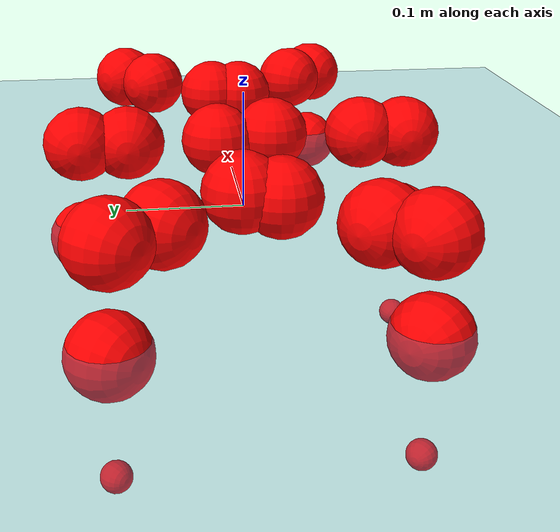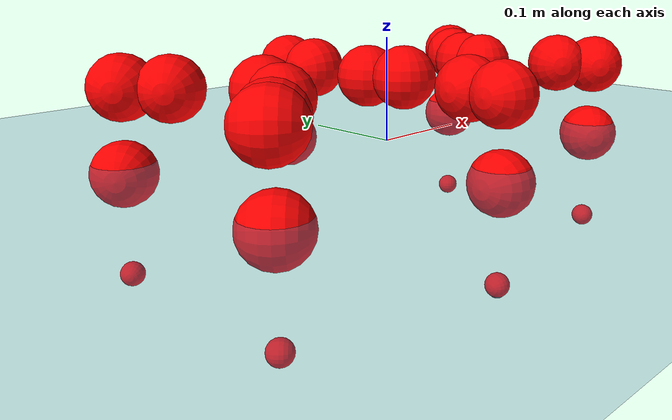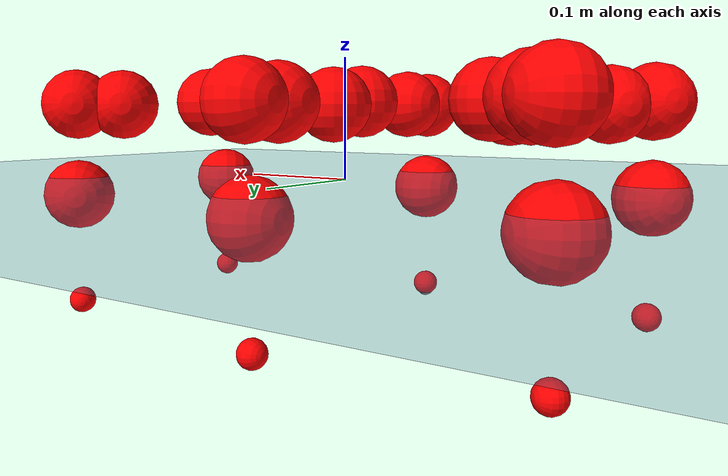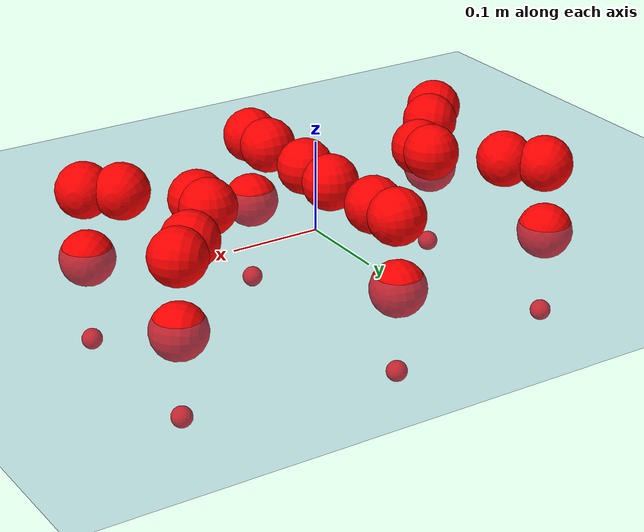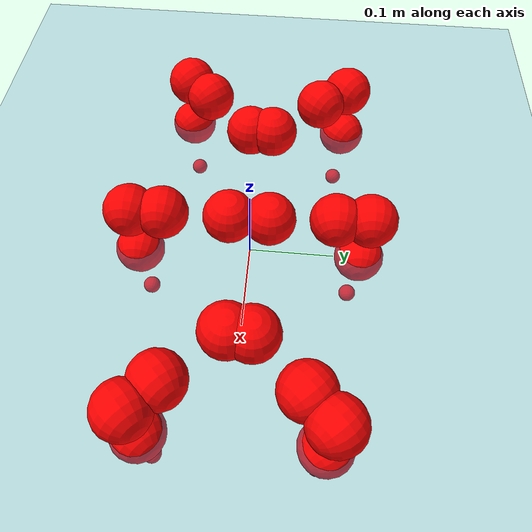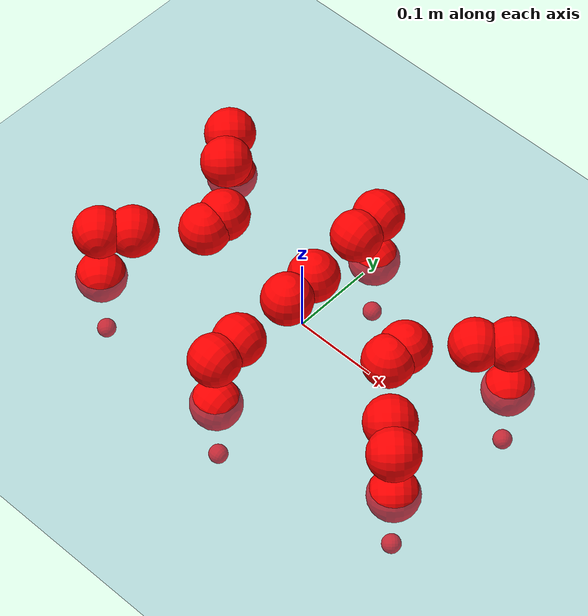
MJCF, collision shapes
<mujoco model="Golem">
  <compiler angle="radian" assetdir="assets" balanceinertia="true" inertiafromgeom="false"/>

  <option timestep="0.005" density="1.2" viscosity="2e-05"/>

  <size nkey="1"/>

  <visual>
    <quality shadowsize="8192"/>
    <map shadowclip="0.5"/>
  </visual>

  <default>
    <default class="/">
      <joint armature="0.01" damping="0.01" frictionloss="0.01"/>
      <geom contype="0" conaffinity="0" group="1" solref="-1000 -80"/>
      <site size="0.01 0.005 0.005" group="5"/>
      <general forcelimited="true" biastype="affine" gainprm="25" biasprm="0 -25 -0.5"/>
      <default class="visual">
        <geom type="mesh" group="2"/>
      </default>
      <default class="collision">
        <geom group="3"/>
      </default>
      <default class="foot">
        <geom size="0.01 0 0" condim="6" group="4" priority="1" solimp="0.015 1 0.01"/>
      </default>
      <default class="reward_collision_sphere">
        <geom group="5" rgba="1 0 0 1"/>
      </default>
    </default>
  </default>

  <asset>
    <texture type="skybox" colorspace="auto" name="//unnamed_texture_0" builtin="gradient" rgb1="0.95 0.95 0.95" rgb2="0.95 0.95 0.95" width="100" height="600"/>
    <texture type="2d" colorspace="auto" name="texplane" builtin="checker" rgb1="0.345 0.575 0.748" rgb2="0.345 0.575 0.748" markrgb="1 1 1" width="512" height="512"/>
    <material name="MatPlane" class="/" texture="texplane" texuniform="true" texrepeat="2 2" specular="0.9"/>
    <mesh name="body" class="/" file="body.stl" scale="0.001 0.001 0.001"/>
    <mesh name="coxa" class="/" file="coxa.stl" scale="0.001 0.001 0.001"/>
    <mesh name="femur" class="/" file="femur.stl" scale="0.001 0.001 0.001"/>
    <mesh name="tibia" class="/" file="tibia.stl" scale="0.001 0.001 0.001"/>
    <mesh name="tarsus" class="/" file="tarsus.stl" scale="0.001 0.001 0.001"/>
  </asset>

  <worldbody>
    <geom name="floor" class="/" size="100 100 0.125" type="plane" group="0" material="MatPlane"/>
    <light name="toplight_shadow" class="/" pos="0 0 5" dir="0.0990148 0.0990148 -0.990148" type="directional" ambient="0.04 0.04 0.04" diffuse="0.55 0.55 0.55" specular="0.12 0.12 0.12"/>
    <light name="toplight_fill" class="/" pos="0 0 5" dir="0.0990148 0.0990148 -0.990148" type="directional" castshadow="false" ambient="0.04 0.04 0.04" diffuse="0.3 0.3 0.3" specular="0.08 0.08 0.08"/>
    <body name="trunk" pos="-0.000151847 0.000210764 -0.00043412" quat="0.999999 0.000448205 0.000451633 0.000864103">
      <inertial pos="0.000735563 -0.000982448 -0.00236648" quat="0.999999 0.000969738 -0.000368415 0.000199632" mass="1.59332" diaginertia="0.0051795 6.6905e-05 0.00978768"/>
      <joint name="//unnamed_joint_0" type="free"/>
      <geom name="//unnamed_geom_1" class="/" pos="0 0 0.0638554" quat="1 0 0 0" type="mesh" rgba="0.9 0.9 0.9 1" mesh="body"/>
      <site name="imu" class="/" pos="0.12642 -0.0112894 0.102195" size="0.00749114"/>
      <camera name="track" class="/" pos="0 -0.740595 0" quat="0.707107 0.707107 0 0" mode="trackcom"/>
      <camera name="ego_camera" class="/" pos="0.11431 0 0.0997741" quat="-0.5 -0.5 0.5 0.5"/>
      <body name="coxa_RR" pos="-0.157614 -0.029778 0.0611333" quat="0.382265 0.00099135 -4.64954e-06 -0.924052">
        <inertial pos="0.0001807 -0.000142542 0.00309295" quat="0.99992 -0.0100025 0.00662524 0.00409491" mass="0.0877758" diaginertia="0.00545486 7.24771e-05 0.0102097"/>
        <joint name="coxa_joint_RR" class="/" pos="0 0 0" axis="-0.00385076 -0.00196083 -0.999991" range="-3.19453 3.08653" armature="0.00748912" damping="0.0152906" frictionloss="0.00835743"/>
        <geom name="//unnamed_geom_2" class="/" type="mesh" rgba="0.2 0.2 0.2 1" mesh="coxa"/>
        <geom name="//unnamed_geom_3" class="reward_collision_sphere" size="0.0299646" pos="-0.0263791 0 0"/>
        <body name="femur_RR" pos="0.0537758 0.0014182 0.000657058" quat="0.499726 -0.499974 0.500474 0.499825">
          <inertial pos="0.000699613 -0.000525392 0.000741756" quat="0.999995 0.000244358 -0.0025588 0.00200216" mass="0.083774" diaginertia="0.00536258 7.13099e-05 0.00984944"/>
          <joint name="femur_joint_RR" class="/" pos="0 0 0" axis="0.00923174 -0.00187035 -0.999956" range="-3.08708 3.13854" armature="0.0064169" damping="0" frictionloss="0.0074054"/>
          <geom name="//unnamed_geom_4" class="/" type="mesh" rgba="0.9 0.9 0.9 1" mesh="femur"/>
          <geom name="//unnamed_geom_5" class="reward_collision_sphere" size="0.0299646"/>
          <body name="tibia_RR" pos="-0.00245737 -0.0376574 0.00196371" quat="-0.000454323 0.999999 -0.000570385 0.00111608">
            <inertial pos="0.00290013 0.00241214 -0.00113918" quat="0.999993 -0.000673102 0.00281345 0.00225382" mass="0.0869013" diaginertia="0.00522416 6.9587e-05 0.00953452"/>
            <joint name="tibia_joint_RR" class="/" pos="0 0 0" axis="-0.00865063 -0.00935788 0.999919" range="-3.08886 3.13643" armature="0.00651178" damping="0" frictionloss="0.00787931"/>
            <geom name="//unnamed_geom_6" class="/" type="mesh" rgba="0.2 0.2 0.2 1" mesh="tibia"/>
            <geom name="//unnamed_geom_7" class="reward_collision_sphere" size="0.0299646"/>
            <body name="tarsus_RR" pos="0.0745442 0.00177988 -0.00241942" quat="1 -0.000136052 0.000384315 -0.000265261">
              <inertial pos="0.0506245 0.00133267 -0.00124046" quat="0.499293 0.499635 0.501164 0.499906" mass="0.0876177" diaginertia="0.00550841 6.9442e-05 0.0104529"/>
              <joint name="tarsus_joint_RR" class="/" pos="0 0 0" axis="-0.0129578 0.00312794 0.999911" stiffness="0.00212252" range="-3.17184 3.15778" armature="0.00766094" damping="0" frictionloss="0.00715089"/>
              <geom name="//unnamed_geom_8" class="/" type="mesh" rgba="0.9 0.9 0.9 1" mesh="tarsus"/>
              <geom name="foot_1" class="foot" size="0.00750769" pos="0.0984821 0 0" quat="0 -0.707107 0 0.707107"/>
              <geom name="//unnamed_geom_10" class="reward_collision_sphere" size="0.0299646"/>
              <geom name="//unnamed_geom_11" class="reward_collision_sphere" size="0.0112367" pos="0.0945252 0 0"/>
              <site name="foot_1" class="foot" pos="0.0984821 0 0" quat="0 -0.707107 0 0.707107" size="0.00749114"/>
            </body>
          </body>
        </body>
      </body>
      <body name="coxa_RM" pos="-0.00120231 -0.0495971 0.0649513" quat="0.706922 -0.000964951 -0.000927696 -0.70729">
        <inertial pos="0.00195831 -0.00256633 0.0019158" quat="0.999993 0.000786886 0.00349076 -0.000790747" mass="0.0812766" diaginertia="0.00509701 6.9829e-05 0.00985412"/>
        <joint name="coxa_joint_RM" class="/" pos="0 0 0" axis="0.00651768 -0.0121464 -0.999905" range="-3.13515 3.19389" armature="0.00831763" damping="7.28624e-05" frictionloss="0.00648534"/>
        <geom name="//unnamed_geom_12" class="/" type="mesh" rgba="0.2 0.2 0.2 1" mesh="coxa"/>
        <geom name="//unnamed_geom_13" class="reward_collision_sphere" size="0.0299646" pos="-0.0263791 0 0"/>
        <body name="femur_RM" pos="0.0494159 6.68776e-05 -0.00177634" quat="0.499965 -0.500067 0.500023 0.499945">
          <inertial pos="0.00248402 -0.000566045 -0.000508095" quat="0.999997 0.00054676 8.7173e-05 -0.00221398" mass="0.0885164" diaginertia="0.00527146 7.08395e-05 0.0100516"/>
          <joint name="femur_joint_RM" class="/" pos="0 0 0" axis="0.00345599 -0.00067657 -0.999994" range="-3.17641 3.13511" armature="0.00763332" damping="0.0173745" frictionloss="0.00846429"/>
          <geom name="//unnamed_geom_14" class="/" type="mesh" rgba="0.9 0.9 0.9 1" mesh="femur"/>
          <geom name="//unnamed_geom_15" class="reward_collision_sphere" size="0.0299646"/>
          <body name="tibia_RM" pos="0.000741822 -0.037102 -0.000365567" quat="0.000526437 1 3.52513e-05 0.00025634">
            <inertial pos="0.00109492 -0.00275068 -0.0027522" quat="0.999905 0.00753181 -0.0106721 -0.00450706" mass="0.0847728" diaginertia="0.00545026 6.95367e-05 0.0102683"/>
            <joint name="tibia_joint_RM" class="/" pos="0 0 0" axis="0.000782017 0.000680924 0.999999" range="-3.157 3.1129" armature="0.00839568" damping="0.0120148" frictionloss="0.00834957"/>
            <geom name="//unnamed_geom_16" class="/" type="mesh" rgba="0.2 0.2 0.2 1" mesh="tibia"/>
            <geom name="//unnamed_geom_17" class="reward_collision_sphere" size="0.0299646"/>
            <body name="tarsus_RM" pos="0.0779435 0.000380391 -0.0002509" quat="1 5.11633e-05 -1.58817e-05 1.87907e-05">
              <inertial pos="0.0556381 -0.000240342 0.000889079" quat="0.490175 0.497853 0.505444 0.506357" mass="0.0831077" diaginertia="0.00536257 7.06301e-05 0.00955891"/>
              <joint name="tarsus_joint_RM" class="/" pos="0 0 0" axis="0.000164736 0.000761218 1" range="-3.08918 3.17482" armature="0.00835162" damping="0.00686695" frictionloss="0.00739432"/>
              <geom name="//unnamed_geom_18" class="/" type="mesh" rgba="0.9 0.9 0.9 1" mesh="tarsus"/>
              <geom name="foot_2" class="foot" size="0.00825428" pos="0.0984821 0 0" quat="0 -0.707107 0 0.707107"/>
              <geom name="//unnamed_geom_20" class="reward_collision_sphere" size="0.0299646"/>
              <geom name="//unnamed_geom_21" class="reward_collision_sphere" size="0.0112367" pos="0.0945252 0 0"/>
              <site name="foot_2" class="foot" pos="0.0984821 0 0" quat="0 -0.707107 0 0.707107" size="0.00749114"/>
            </body>
          </body>
        </body>
      </body>
      <body name="coxa_RF" pos="0.154249 -0.0295568 0.0645802" quat="0.923868 0.000260834 -0.000277814 -0.38271">
        <inertial pos="-0.00252294 -0.0020452 0.00291297" quat="0.99991 0.0131112 0.00250427 0.00157821" mass="0.0839987" diaginertia="0.00543491 6.89832e-05 0.00989556"/>
        <joint name="coxa_joint_RF" class="/" pos="0 0 0" axis="-0.00211169 0.00254896 -0.999995" range="-3.16569 3.19081" armature="0.0065794" damping="0.00712467" frictionloss="0.00788993"/>
        <geom name="//unnamed_geom_22" class="/" type="mesh" rgba="0.2 0.2 0.2 1" mesh="coxa"/>
        <geom name="//unnamed_geom_23" class="reward_collision_sphere" size="0.0299646" pos="-0.0263791 0 0"/>
        <body name="femur_RF" pos="0.0539684 -0.00219906 -0.000215148" quat="0.501055 -0.499326 0.499883 0.499734">
          <inertial pos="-0.000258565 -0.00290837 0.00269418" quat="0.999921 -0.00507568 0.000653291 0.0114704" mass="0.0839187" diaginertia="0.00506233 6.70157e-05 0.00990692"/>
          <joint name="femur_joint_RF" class="/" pos="0 0 0" axis="0.00289498 -0.00121704 -0.999995" range="-3.087 3.13925" armature="0.00727361" damping="0" frictionloss="0.00649978"/>
          <geom name="//unnamed_geom_24" class="/" type="mesh" rgba="0.9 0.9 0.9 1" mesh="femur"/>
          <geom name="//unnamed_geom_25" class="reward_collision_sphere" size="0.0299646"/>
          <body name="tibia_RF" pos="0.00184817 -0.0399725 0.001731" quat="0.00071212 0.999999 0.000895301 0.0008485">
            <inertial pos="8.50138e-05 0.00245616 -0.000979317" quat="0.999916 0.0128182 0.00119793 -0.00174606" mass="0.0852765" diaginertia="0.00533959 6.96883e-05 0.00997577"/>
            <joint name="tibia_joint_RF" class="/" pos="0 0 0" axis="-0.0103858 -0.00737902 0.999919" stiffness="0.00187004" range="-3.12561 3.12557" armature="0.00725761" damping="0.000639345" frictionloss="0.00750386"/>
            <geom name="//unnamed_geom_26" class="/" type="mesh" rgba="0.2 0.2 0.2 1" mesh="tibia"/>
            <geom name="//unnamed_geom_27" class="reward_collision_sphere" size="0.0299646"/>
            <body name="tarsus_RF" pos="0.0757731 -0.000402868 -0.00166137" quat="0.999999 -0.000199546 -0.00135074 -1.48241e-05">
              <inertial pos="0.0502429 0.000830533 0.00222408" quat="0.492631 0.510692 0.495795 0.500695" mass="0.0791718" diaginertia="0.00525516 6.82796e-05 0.00952013"/>
              <joint name="tarsus_joint_RF" class="/" pos="0 0 0" axis="-0.00641504 -0.0120963 0.999906" range="-3.08987 3.13184" armature="0.00745769" damping="0.00482043" frictionloss="0.00846159"/>
              <geom name="//unnamed_geom_28" class="/" type="mesh" rgba="0.9 0.9 0.9 1" mesh="tarsus"/>
              <geom name="foot_3" class="foot" size="0.00747233" pos="0.0984821 0 0" quat="0 -0.707107 0 0.707107"/>
              <geom name="//unnamed_geom_30" class="reward_collision_sphere" size="0.0299646"/>
              <geom name="//unnamed_geom_31" class="reward_collision_sphere" size="0.0112367" pos="0.0945252 0 0"/>
              <site name="foot_3" class="foot" pos="0.0984821 0 0" quat="0 -0.707107 0 0.707107" size="0.00749114"/>
            </body>
          </body>
        </body>
      </body>
      <body name="coxa_LR" pos="-0.154088 0.0348321 0.0648691" quat="0.382043 -0.000819163 -0.00096254 0.924144">
        <inertial pos="0.00296844 -0.000107461 -0.00199473" quat="0.999904 0.00209939 0.0083451 -0.0108329" mass="0.0845511" diaginertia="0.00518599 7.0091e-05 0.00995385"/>
        <joint name="coxa_joint_LR" class="/" pos="0 0 0" axis="-0.0104526 -0.00183446 -0.999944" range="-3.12376 3.1212" armature="0.00708077" damping="0.00259167" frictionloss="0.00729504"/>
        <geom name="//unnamed_geom_32" class="/" type="mesh" rgba="0.2 0.2 0.2 1" mesh="coxa"/>
        <geom name="//unnamed_geom_33" class="reward_collision_sphere" size="0.0299646" pos="-0.0263791 0 0"/>
        <body name="femur_LR" pos="0.0527231 -0.00368979 0.000565287" quat="0.498898 -0.500552 0.499982 0.500566">
          <inertial pos="0.000559122 0.000523213 -0.000834963" quat="0.999997 -0.00101392 -0.00227464 -0.000261218" mass="0.0860669" diaginertia="0.00532228 7.06498e-05 0.0101961"/>
          <joint name="femur_joint_LR" class="/" pos="0 0 0" axis="0.00251701 0.000529951 0.999997" range="-3.10487 3.18094" armature="0.00786594" damping="0" frictionloss="0.00834719"/>
          <geom name="//unnamed_geom_34" class="/" type="mesh" rgba="0.9 0.9 0.9 1" mesh="femur"/>
          <geom name="//unnamed_geom_35" class="reward_collision_sphere" size="0.0299646"/>
          <body name="tibia_LR" pos="-0.00050152 -0.0432487 -0.0050091" quat="0.000248009 1 -0.000403099 -0.000182712">
            <inertial pos="0.000684746 -0.00273027 0.00287384" quat="1 0.000791773 0.000362206 0.000453282" mass="0.0828911" diaginertia="0.00532421 7.27579e-05 0.0099985"/>
            <joint name="tibia_joint_LR" class="/" pos="0 0 0" axis="-0.000449134 0.00726026 -0.999974" range="-3.1389 3.0842" armature="0.00657877" damping="0.00826865" frictionloss="0.00675627"/>
            <geom name="//unnamed_geom_36" class="/" type="mesh" rgba="0.2 0.2 0.2 1" mesh="tibia"/>
            <geom name="//unnamed_geom_37" class="reward_collision_sphere" size="0.0299646"/>
            <body name="tarsus_LR" pos="0.0769524 0.00369565 0.000260268" quat="1 0.00016356 1.281e-05 -8.87894e-05">
              <inertial pos="0.0525066 -0.000995162 0.00049925" quat="0.499919 0.499978 0.50009 0.500012" mass="0.0834571" diaginertia="0.00519578 6.8165e-05 0.00984372"/>
              <joint name="tarsus_joint_LR" class="/" pos="0 0 0" axis="0.00141531 0.00426618 -0.99999" range="-3.0874 3.14285" armature="0.00757076" damping="0.000860236" frictionloss="0.00709131"/>
              <geom name="//unnamed_geom_38" class="/" type="mesh" rgba="0.9 0.9 0.9 1" mesh="tarsus"/>
              <geom name="foot_4" class="foot" size="0.00676511" pos="0.0984821 0 0" quat="0.707107 0 -0.707107 0"/>
              <geom name="//unnamed_geom_40" class="reward_collision_sphere" size="0.0299646"/>
              <geom name="//unnamed_geom_41" class="reward_collision_sphere" size="0.0112367" pos="0.0945252 0 0"/>
              <site name="foot_4" class="foot" pos="0.0984821 0 0" quat="0.707107 0 -0.707107 0" size="0.00749114"/>
            </body>
          </body>
        </body>
      </body>
      <body name="coxa_LM" pos="-0.00374741 0.0481612 0.0619003" quat="0.706663 0.000175677 0.000916481 0.70755">
        <inertial pos="-0.000589553 -2.05437e-05 0.00276216" quat="0.999987 0.00283227 -0.000966938 -0.00403991" mass="0.0856394" diaginertia="0.00554909 7.14589e-05 0.0103318"/>
        <joint name="coxa_joint_LM" class="/" pos="0 0 0" axis="0.000426911 0.000879601 -1" stiffness="0.00653993" range="-3.19509 3.15409" armature="0.00643277" damping="0.000429763" frictionloss="0.008531"/>
        <geom name="//unnamed_geom_42" class="/" type="mesh" rgba="0.2 0.2 0.2 1" mesh="coxa"/>
        <geom name="//unnamed_geom_43" class="reward_collision_sphere" size="0.0299646" pos="-0.0263791 0 0"/>
        <body name="femur_LM" pos="0.0476901 0.00375243 0.00138856" quat="0.500019 -0.500016 0.499893 0.500072">
          <inertial pos="-0.000499427 -0.00282742 6.94703e-06" quat="0.999934 0.00551565 0.00574634 -0.00829127" mass="0.0788014" diaginertia="0.00509214 6.7722e-05 0.00958705"/>
          <joint name="femur_joint_LM" class="/" pos="0 0 0" axis="0.00632495 0.00931438 0.999937" range="-3.14847 3.15615" armature="0.0067636" damping="0.00723809" frictionloss="0.00841158"/>
          <geom name="//unnamed_geom_44" class="/" type="mesh" rgba="0.9 0.9 0.9 1" mesh="femur"/>
          <geom name="//unnamed_geom_45" class="reward_collision_sphere" size="0.0299646"/>
          <body name="tibia_LM" pos="-0.000843938 -0.0381201 0.0016622" quat="-0.000159502 1 0.000355436 4.53454e-05">
            <inertial pos="-0.00241264 0.000950283 -0.00094576" quat="1 4.52509e-05 -1.83493e-05 1.88825e-05" mass="0.086113" diaginertia="0.00502222 6.92088e-05 0.00967872"/>
            <joint name="tibia_joint_LM" class="/" pos="0 0 0" axis="0.000334264 0.000180835 -1" range="-3.08559 3.13714" armature="0.00728951" damping="0" frictionloss="0.00668639"/>
            <geom name="//unnamed_geom_46" class="/" type="mesh" rgba="0.2 0.2 0.2 1" mesh="tibia"/>
            <geom name="//unnamed_geom_47" class="reward_collision_sphere" size="0.0299646"/>
            <body name="tarsus_LM" pos="0.0803595 -0.000386753 -0.00332033" quat="1 2.81455e-05 0.000240351 0.000193301">
              <inertial pos="0.0510655 -0.00014632 -0.000193249" quat="0.49971 0.496922 0.499397 0.503945" mass="0.080469" diaginertia="0.0051311 6.87452e-05 0.0101017"/>
              <joint name="tarsus_joint_LM" class="/" pos="0 0 0" axis="0.00329444 0.0119152 -0.999924" range="-3.13937 3.08463" armature="0.0075253" damping="0.0126869" frictionloss="0.00644983"/>
              <geom name="//unnamed_geom_48" class="/" type="mesh" rgba="0.9 0.9 0.9 1" mesh="tarsus"/>
              <geom name="foot_5" class="foot" size="0.00723864" pos="0.0984821 0 0" quat="0.707107 0 -0.707107 0"/>
              <geom name="//unnamed_geom_50" class="reward_collision_sphere" size="0.0299646"/>
              <geom name="//unnamed_geom_51" class="reward_collision_sphere" size="0.0112367" pos="0.0945252 0 0"/>
              <site name="foot_5" class="foot" pos="0.0984821 0 0" quat="0.707107 0 -0.707107 0" size="0.00749114"/>
            </body>
          </body>
        </body>
      </body>
      <body name="coxa_LF" pos="0.155486 0.0332576 0.0650101" quat="0.923661 -0.00054527 -0.000521192 0.38321">
        <inertial pos="0.00147481 -0.00254432 0.000802956" quat="0.999998 0.000223758 0.000435525 -0.0020046" mass="0.0815414" diaginertia="0.00508559 6.48968e-05 0.00956954"/>
        <joint name="coxa_joint_LF" class="/" pos="0 0 0" axis="0.00497399 -0.00679738 -0.999965" range="-3.1916 3.12389" armature="0.00755749" damping="0" frictionloss="0.00820784"/>
        <geom name="//unnamed_geom_52" class="/" type="mesh" rgba="0.2 0.2 0.2 1" mesh="coxa"/>
        <geom name="//unnamed_geom_53" class="reward_collision_sphere" size="0.0299646" pos="-0.0263791 0 0"/>
        <body name="femur_LF" pos="0.0493031 0.00277322 -0.00213785" quat="0.501094 -0.499614 0.499746 0.499544">
          <inertial pos="-0.00037594 -0.000362619 0.00105747" quat="0.999938 0.000587454 -0.00364857 -0.0104899" mass="0.083483" diaginertia="0.00521168 6.68997e-05 0.00953638"/>
          <joint name="femur_joint_LF" class="/" pos="0 0 0" axis="-0.0103348 0.00914009 0.999905" range="-3.1439 3.10812" armature="0.00778928" damping="0.0117231" frictionloss="0.00671035"/>
          <geom name="//unnamed_geom_54" class="/" type="mesh" rgba="0.9 0.9 0.9 1" mesh="femur"/>
          <geom name="//unnamed_geom_55" class="reward_collision_sphere" size="0.0299646"/>
          <body name="tibia_LF" pos="-0.000161075 -0.0389812 -0.000829782" quat="-2.29105e-05 1 -2.80035e-06 1.53882e-05">
            <inertial pos="-0.000598117 0.000627587 3.49149e-05" quat="0.999958 0.00345055 -0.00268536 -0.00800923" mass="0.0867094" diaginertia="0.00524555 6.80066e-05 0.00964176"/>
            <joint name="tibia_joint_LF" class="/" pos="0 0 0" axis="-0.0130954 0.00273263 -0.999911" stiffness="0.0062121" range="-3.18639 3.13022" armature="0.00826232" damping="0.0120117" frictionloss="0.00653066"/>
            <geom name="//unnamed_geom_56" class="/" type="mesh" rgba="0.2 0.2 0.2 1" mesh="tibia"/>
            <geom name="//unnamed_geom_57" class="reward_collision_sphere" size="0.0299646"/>
            <body name="tarsus_LF" pos="0.078904 0.000655666 0.00140661" quat="1 -3.3896e-05 -4.39437e-05 -8.51322e-06">
              <inertial pos="0.0520705 -0.000156097 0.00240426" quat="0.500371 0.499673 0.500047 0.499909" mass="0.0839655" diaginertia="0.00520917 6.88565e-05 0.00964953"/>
              <joint name="tarsus_joint_LF" class="/" pos="0 0 0" axis="-0.0145113 -0.00529659 -0.999881" stiffness="0.0296631" range="-3.13616 3.18278" armature="0.00736736" damping="0.0229508" frictionloss="0.00708948"/>
              <geom name="//unnamed_geom_58" class="/" type="mesh" rgba="0.9 0.9 0.9 1" mesh="tarsus"/>
              <geom name="foot_6" class="foot" size="0.00731014" pos="0.0984821 0 0" quat="0.707107 0 -0.707107 0"/>
              <geom name="//unnamed_geom_60" class="reward_collision_sphere" size="0.0299646"/>
              <geom name="//unnamed_geom_61" class="reward_collision_sphere" size="0.0112367" pos="0.0945252 0 0"/>
              <site name="foot_6" class="foot" pos="0.0984821 0 0" quat="0.707107 0 -0.707107 0" size="0.00749114"/>
            </body>
          </body>
        </body>
      </body>
    </body>
  </worldbody>

  <contact>
    <pair class="/" geom1="floor" geom2="foot_1" name="//unnamed_contact_0"/>
    <pair class="/" geom1="floor" geom2="foot_2" name="//unnamed_contact_1"/>
    <pair class="/" geom1="floor" geom2="foot_3" name="//unnamed_contact_2"/>
    <pair class="/" geom1="floor" geom2="foot_4" name="//unnamed_contact_3"/>
    <pair class="/" geom1="floor" geom2="foot_5" name="//unnamed_contact_4"/>
    <pair class="/" geom1="floor" geom2="foot_6" name="//unnamed_contact_5"/>
  </contact>

  <actuator>
    <general name="coxa_joint_RR" class="/" joint="coxa_joint_RR" forcerange="-6.02177 6.02177" gainprm="17.3822" biasprm="0 -17.3822 -0.363604"/>
    <general name="femur_joint_RR" class="/" joint="femur_joint_RR" forcerange="-5.73676 5.73676" gainprm="17.3822" biasprm="0 -17.3822 -0.363604"/>
    <general name="tibia_joint_RR" class="/" joint="tibia_joint_RR" forcerange="-5.55756 5.55756" gainprm="17.3822" biasprm="0 -17.3822 -0.363604"/>
    <general name="tarsus_joint_RR" class="/" joint="tarsus_joint_RR" forcerange="-5.29252 5.29252" gainprm="17.3822" biasprm="0 -17.3822 -0.363604"/>
    <general name="coxa_joint_RM" class="/" joint="coxa_joint_RM" forcerange="-6.02624 6.02624" gainprm="17.3822" biasprm="0 -17.3822 -0.363604"/>
    <general name="femur_joint_RM" class="/" joint="femur_joint_RM" forcerange="-6.03958 6.03958" gainprm="17.3822" biasprm="0 -17.3822 -0.363604"/>
    <general name="tibia_joint_RM" class="/" joint="tibia_joint_RM" forcerange="-5.17308 5.17308" gainprm="17.3822" biasprm="0 -17.3822 -0.363604"/>
    <general name="tarsus_joint_RM" class="/" joint="tarsus_joint_RM" forcerange="-5.94461 5.94461" gainprm="17.3822" biasprm="0 -17.3822 -0.363604"/>
    <general name="coxa_joint_RF" class="/" joint="coxa_joint_RF" forcerange="-6.01468 6.01468" gainprm="17.3822" biasprm="0 -17.3822 -0.363604"/>
    <general name="femur_joint_RF" class="/" joint="femur_joint_RF" forcerange="-4.92547 4.92547" gainprm="17.3822" biasprm="0 -17.3822 -0.363604"/>
    <general name="tibia_joint_RF" class="/" joint="tibia_joint_RF" forcerange="-5.22769 5.22769" gainprm="17.3822" biasprm="0 -17.3822 -0.363604"/>
    <general name="tarsus_joint_RF" class="/" joint="tarsus_joint_RF" forcerange="-5.39566 5.39566" gainprm="17.3822" biasprm="0 -17.3822 -0.363604"/>
    <general name="coxa_joint_LR" class="/" joint="coxa_joint_LR" forcerange="-5.83131 5.83131" gainprm="17.3822" biasprm="0 -17.3822 -0.363604"/>
    <general name="femur_joint_LR" class="/" joint="femur_joint_LR" forcerange="-4.93186 4.93186" gainprm="17.3822" biasprm="0 -17.3822 -0.363604"/>
    <general name="tibia_joint_LR" class="/" joint="tibia_joint_LR" forcerange="-5.20075 5.20075" gainprm="17.3822" biasprm="0 -17.3822 -0.363604"/>
    <general name="tarsus_joint_LR" class="/" joint="tarsus_joint_LR" forcerange="-5.68938 5.68938" gainprm="17.3822" biasprm="0 -17.3822 -0.363604"/>
    <general name="coxa_joint_LM" class="/" joint="coxa_joint_LM" forcerange="-5.44723 5.44723" gainprm="17.3822" biasprm="0 -17.3822 -0.363604"/>
    <general name="femur_joint_LM" class="/" joint="femur_joint_LM" forcerange="-5.49746 5.49746" gainprm="17.3822" biasprm="0 -17.3822 -0.363604"/>
    <general name="tibia_joint_LM" class="/" joint="tibia_joint_LM" forcerange="-4.98781 4.98781" gainprm="17.3822" biasprm="0 -17.3822 -0.363604"/>
    <general name="tarsus_joint_LM" class="/" joint="tarsus_joint_LM" forcerange="-5.50002 5.50002" gainprm="17.3822" biasprm="0 -17.3822 -0.363604"/>
    <general name="coxa_joint_LF" class="/" joint="coxa_joint_LF" forcerange="-6.03823 6.03823" gainprm="17.3822" biasprm="0 -17.3822 -0.363604"/>
    <general name="femur_joint_LF" class="/" joint="femur_joint_LF" forcerange="-6.03367 6.03367" gainprm="17.3822" biasprm="0 -17.3822 -0.363604"/>
    <general name="tibia_joint_LF" class="/" joint="tibia_joint_LF" forcerange="-5.35921 5.35921" gainprm="17.3822" biasprm="0 -17.3822 -0.363604"/>
    <general name="tarsus_joint_LF" class="/" joint="tarsus_joint_LF" forcerange="-5.49205 5.49205" gainprm="17.3822" biasprm="0 -17.3822 -0.363604"/>
  </actuator>

  <sensor>
    <gyro site="imu" name="imu_angular_velocity"/>
    <velocimeter site="imu" name="imu_linear_velocity"/>
    <framelinvel objtype="site" objname="foot_1" name="foot_1_global_linear_velocity"/>
    <framelinvel objtype="site" objname="foot_2" name="foot_2_global_linear_velocity"/>
    <framelinvel objtype="site" objname="foot_3" name="foot_3_global_linear_velocity"/>
    <framelinvel objtype="site" objname="foot_4" name="foot_4_global_linear_velocity"/>
    <framelinvel objtype="site" objname="foot_5" name="foot_5_global_linear_velocity"/>
    <framelinvel objtype="site" objname="foot_6" name="foot_6_global_linear_velocity"/>
  </sensor>

  <keyframe>
    <key name="home" qpos="0 0 0.1457 1 0 0 0 0 0 0 0 0 0 0 0 0 0 0 0 0 0 0 0 0 0 0 0 0 0 0 0"/>
  </keyframe>
</mujoco>
